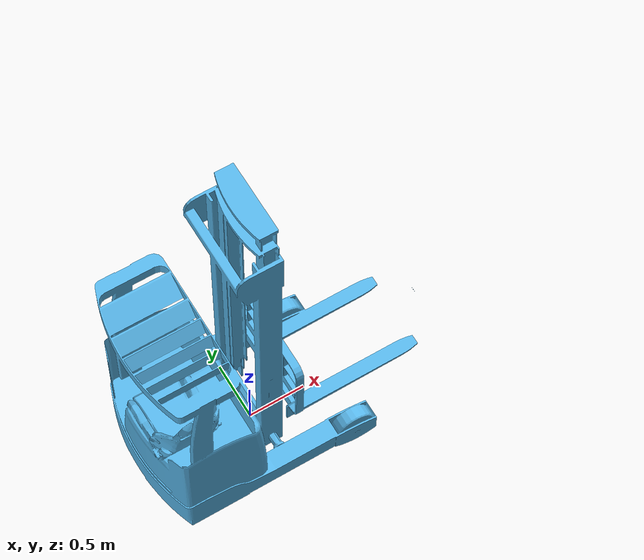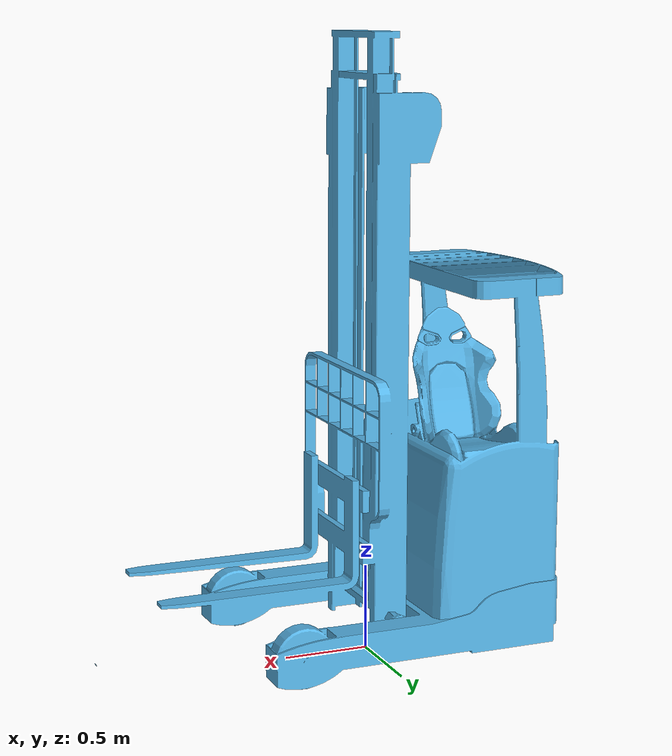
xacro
<?xml version="1.0"?>

<robot name="cititruck" xmlns:xacro="http://ros.org/wiki/xacro">

  <!-- Import all Gazebo-customization elements, including Gazebo colors -->
  <xacro:include filename="$(find cititruck_description)/urdf/cititruck.gazebo" />
  <!-- Import Rviz colors -->
  <xacro:include filename="$(find cititruck_description)/urdf/materials.xacro" />

  <!-- base_footprint is a fictitious link(frame) that is on the ground right below base_link origin, navigation stack dedpends on this frame and KDL needs a root link without any intertia -->
    <link name="base_footprint">
    </link>

    <joint name="base_footprint_joint" type="fixed">
      <origin xyz="0 0 0.050" rpy="0 0 0" />
      <child link="base_link" />
      <parent link="base_footprint"/>
    </joint>

  <!-- Base Link -->
  <link name="base_link">
    <inertial>
      <mass value="20"/>
      <inertia ixx="1" ixy="0" ixz="0" iyy="1" iyz="0" izz="1" />
      <origin/>
    </inertial>
    <visual>
      <origin xyz="0.8 0 0" rpy="0 0 0" />
      <geometry>
        <!-- box size="0.4 0.55 0.75" /-->
        <mesh filename="package://cititruck_description/meshes/ETV216.dae" scale="0.001 0.001 0.001"/>
      </geometry>
      <!-- material name="red"/-->
    </visual>

    <collision>
      <origin xyz="0.8 0 0.1" rpy="0 0 0" />
      <geometry>
        <box size="0.4 0.55 0.005" />
      </geometry>
    </collision>
  </link>

</robot>
